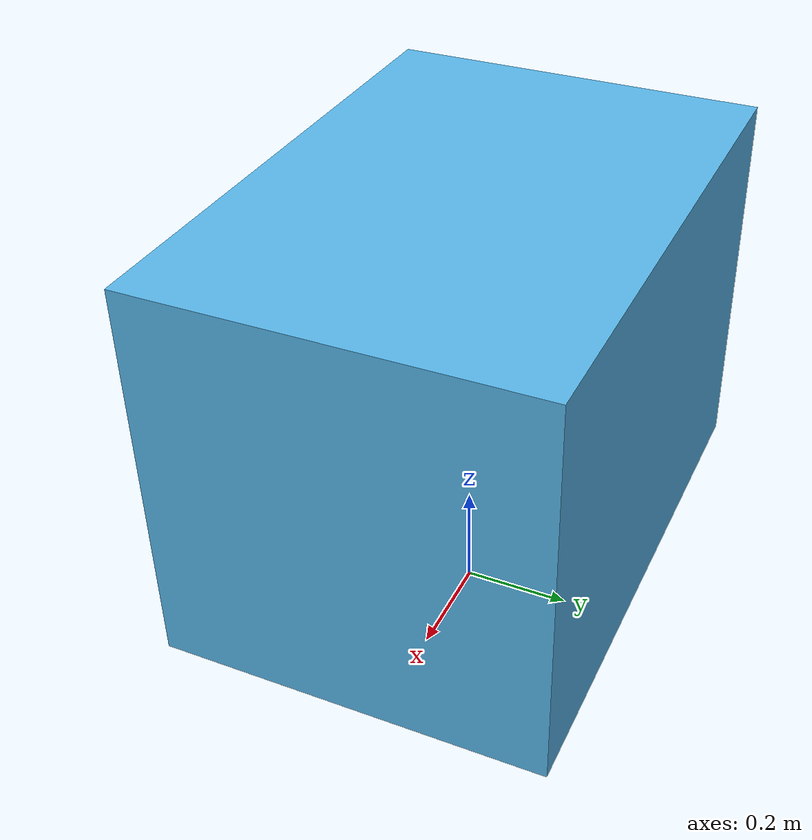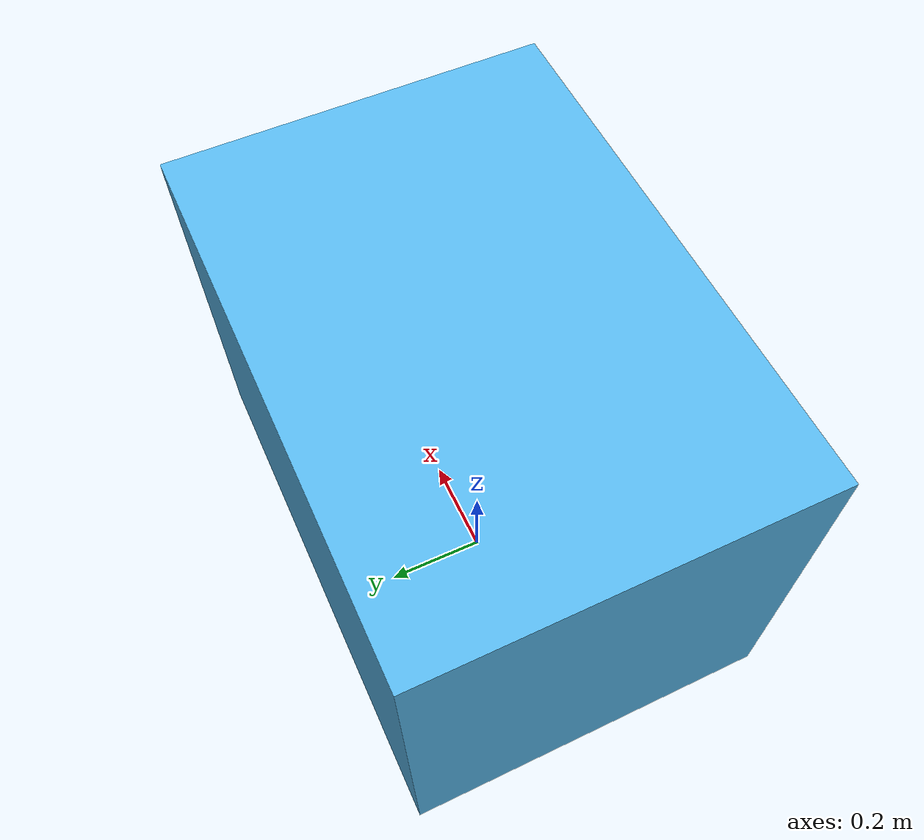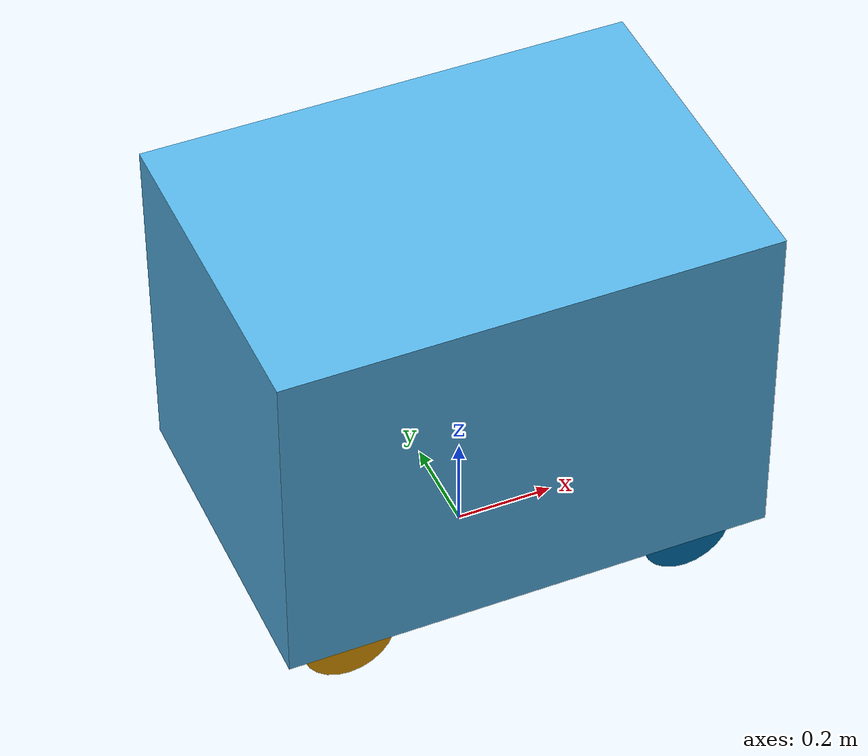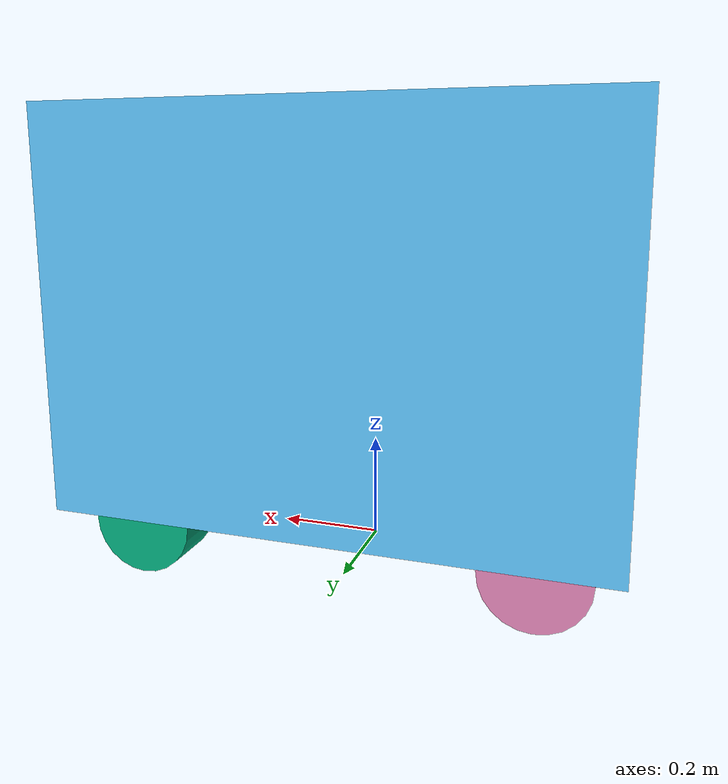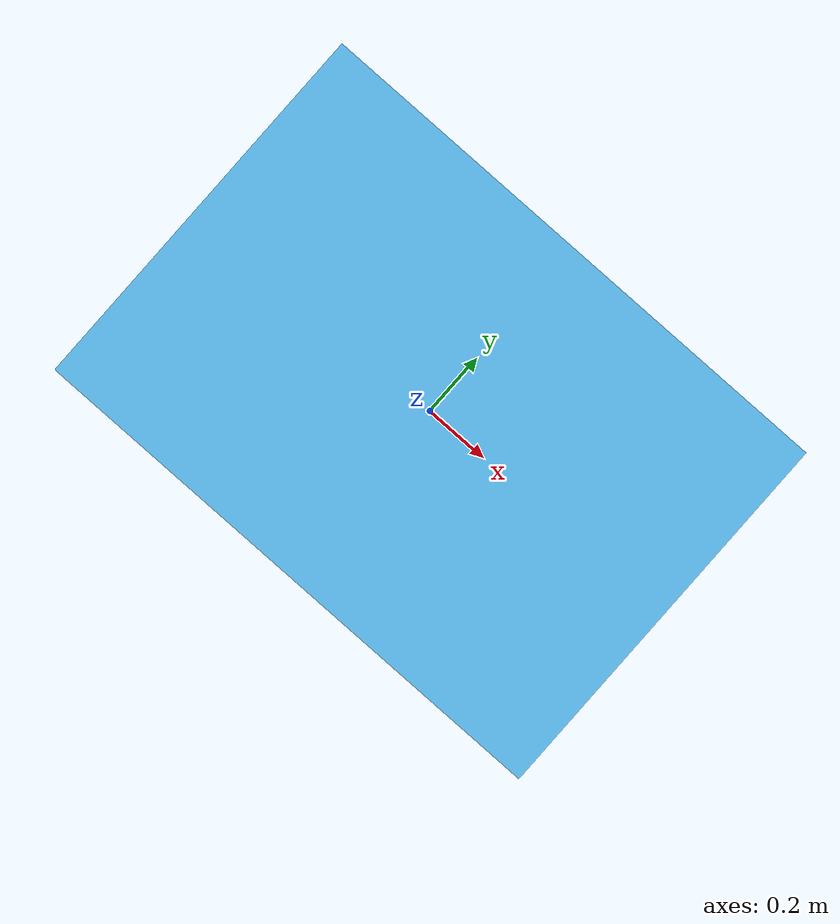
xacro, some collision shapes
<?xml version="1.0"?>
<robot name="DonkeyRobot" xmlns:xacro="http://www.ros.org/wiki/xacro">
    <xacro:include filename="$(find donkey_description)/urdf/donkey.xacro" />

    <xacro:donkey_base prefix="donkey_" donkey_gazebo_ros_control="true">
        <origin xyz="0.0 0.0 0.0" rpy="0 0 0"/>
    </xacro:donkey_base>

    <link name="dummy_link"/>
    <xacro:meccanum_base_mount prefix="donkey_" child="dummy_link">
        <origin xyz="0.0 0.0 0.0" rpy="0 0 0"/>
    </xacro:meccanum_base_mount>

</robot>

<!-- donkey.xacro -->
<robot name="donkey_base" xmlns:xacro="http://ros.org/wiki/xacro">
    <xacro:include filename="$(find donkey_description)/urdf/base/base.xacro" />

    <xacro:macro name="donkey_base" params="prefix *origin donkey_gazebo_ros_control:=true">
        <xacro:property name="wheel_radius" value="0.095" />
        <xacro:property name="wheel_thickness" value="0.10" />
        <xacro:property name="wheel_mass" value="8.0" />
        <xacro:property name="wheel_base" value="0.72" />
        <xacro:property name="track_gauge" value="0.5" />
        <xacro:property name="base_mass" value="200.0" />
        <xacro:property name="base_height" value="0.877" />
        <xacro:property name="base_length" value="1.007" />
        <xacro:property name="base_width" value="0.707" />

        <xacro:meccanum_base prefix="donkey_" size_x="${base_length}" size_y="${base_width}" size_z="${base_height}" mass="${base_mass}"/>

        <xacro:meccanum_wheel prefix="fl_" parent="donkey_base" radius="${wheel_radius}" height="${wheel_thickness}" mass="${wheel_mass}">
            <origin xyz="${wheel_base/2} ${track_gauge/2} ${wheel_radius}" rpy="0 0 0"/>
            <axis>-1 1 0</axis>
        </xacro:meccanum_wheel>

        <xacro:meccanum_wheel prefix="fr_" parent="donkey_base" radius="${wheel_radius}" height="${wheel_thickness}" mass="${wheel_mass}">
            <origin xyz="${wheel_base/2} -${track_gauge/2} ${wheel_radius}" rpy="0 0 0"/>
            <axis>-1 -1 0</axis>
        </xacro:meccanum_wheel>

        <xacro:meccanum_wheel prefix="rl_" parent="donkey_base" radius="${wheel_radius}" height="${wheel_thickness}" mass="${wheel_mass}">
            <origin xyz="-${wheel_base/2} ${track_gauge/2} ${wheel_radius}" rpy="0 0 0"/>
            <axis>1 1 0</axis>
        </xacro:meccanum_wheel>

        <xacro:meccanum_wheel prefix="rr_" parent="donkey_base" radius="${wheel_radius}" height="${wheel_thickness}" mass="${wheel_mass}">
            <origin xyz="-${wheel_base/2} -${track_gauge/2} ${wheel_radius}" rpy="0 0 0"/>
            <axis>1 -1 0</axis>
        </xacro:meccanum_wheel>

        <xacro:if value="${donkey_gazebo_ros_control}">
            <gazebo>
                <plugin name="gazebo_ros_control" filename="libgazebo_ros_control.so">
                    <robotNamespace>/donkey</robotNamespace>
                </plugin>
            </gazebo>
        </xacro:if>
    </xacro:macro>
</robot>

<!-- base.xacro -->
<robot name="generic_base" xmlns:xacro="http://ros.org/wiki/xacro">

    <xacro:macro name="base_cylinder_inertia_def" params="r h mass">
        <inertia ixx="${mass*(3*r*r+h*h)/12}" ixy="0" ixz="0" iyy="${mass*(3*r*r+h*h)/12}" iyz="0" izz="${mass*r*r/2}"/>
    </xacro:macro>

    <xacro:macro name="base_box_inertia_def" params="x y z mass">
        <inertia iyy="${mass*(z*z+x*x)/12.0}" ixx="${mass*(y*y+z*z)/12.0}" izz="${mass*(x*x+y*y)/12.0}" ixy="0.0" iyz="0.0" ixz="0.0"/>
    </xacro:macro>

    <xacro:macro name="base_sphere_inertia_def" params="radius mass">
        <inertia ixx="${2/5*mass*radius*radius}" ixy="0" ixz="0" iyy="${2/5*mass*radius*radius}" iyz="0" izz="${2/5*mass*radius*radius}"/>
    </xacro:macro>

    <xacro:macro name="gazebo_mecanum_link" params="parent radius mass">
        <link name="${parent}_passive">
            <inertial>
                <mass value="1.0"/>
                <origin rpy="0 0 0" xyz="0 0 0"/>
                <xacro:base_sphere_inertia_def radius="${radius}" mass="1.0"/>
            </inertial>
            <collision>
                <origin rpy="0 0 0" xyz="0 0 0"/>
                <geometry>
                    <sphere radius="${radius}"/>
                </geometry>
            </collision>
        </link>
        <joint name="${parent}_passive_joint" type="continuous">
            <axis xyz="0 1 0"/>
            <limit effort="100" velocity="100.0"/>
            <dynamics damping="0.0" friction="0.0"/>
            <safety_controller k_velocity="10.0"/>
            <origin rpy="0 0 0" xyz="0 0 0"/>
            <parent link="${parent}"/>
            <child link="${parent}_passive"/>
        </joint>
        <gazebo reference="${parent}_passive_joint">
            <implicitSpringDamper>1</implicitSpringDamper>
        </gazebo>
        <!-- Passive joint transmission with effort interface.
             Workaround to get all joints to publish a state.
             Do NOT use these joints for control! -->
        <transmission name="${parent}_passive_joint_trans">
            <type>transmission_interface/SimpleTransmission</type>
            <joint name="${parent}_passive_joint">
                <hardwareInterface>hardware_interface/EffortJointInterface</hardwareInterface>
            </joint>
            <actuator name="${parent}_passive_joint_motor">
                <mechanicalReduction>1</mechanicalReduction>
            </actuator>
        </transmission>
        <!-- Contact properties -->
        <gazebo reference="${parent}_passive">
            <mu>5</mu>
            <mu2>5</mu2>
            <dampingFactor>0.00001</dampingFactor>
            <selfCollide>0</selfCollide>
            <kp>1e6</kp>
            <kd>1e2</kd>
            <maxVel>2.0</maxVel>
            <minDepth>0.001</minDepth>
        </gazebo>
    </xacro:macro>

    <!-- Must specify parent and prefix params when instantiating -->
    <xacro:macro name="meccanum_wheel" params="prefix parent *origin radius height mass *axis">
        <link name="${prefix}wheel_link">
            <inertial>
                <mass value="${mass}"/>
                <origin rpy="${pi/2} 0 0" xyz="0 0 0"/>
                <xacro:base_cylinder_inertia_def r="${radius}" h="${height}" mass="${mass}"/>
            </inertial>
            <visual>
                <origin rpy="${pi/2} 0 0" xyz="0 0 0"/>
                <geometry>
                    <cylinder length="${height}" radius="${radius}"/>
                </geometry>
            </visual>
        </link>
        <joint name="${prefix}wheel_joint" type="continuous">
            <axis xyz="0 1 0"/>
            <limit effort="100" velocity="100"/>
            <dynamics damping="0.0" friction="0.0"/>
            <safety_controller k_velocity="10.0"/>
            <xacro:insert_block name="origin"/>
            <parent link="${parent}"/>
            <child link="${prefix}wheel_link"/>
        </joint>
        <xacro:gazebo_mecanum_link parent="${prefix}wheel_link" radius="${radius}" mass="${mass}"/>
        <gazebo>
            <!-- Mecanum plugin -->
            <plugin name="${prefix}wheel_controller" filename="libmecanum_gazebo_plugin.so">
                <wheelLinkName>${prefix}wheel_link</wheelLinkName>
                <baseLinkName>base_link</baseLinkName>
                <xacro:insert_block name="axis"/>
            </plugin>
        </gazebo>
        <gazebo reference="${prefix}wheel_joint">
            <implicitSpringDamper>1</implicitSpringDamper>
        </gazebo>
        <gazebo reference="${prefix}wheel_link">
            <dampingFactor>0.001</dampingFactor>
        </gazebo>
        <transmission name="${prefix}wheel_joint_trans">
            <type>transmission_interface/SimpleTransmission</type>
            <joint name="${prefix}wheel_joint">
                <hardwareInterface>hardware_interface/VelocityJointInterface</hardwareInterface>
            </joint>
            <actuator name="${prefix}wheel_joint_motor">
                <mechanicalReduction>1</mechanicalReduction>
            </actuator>
        </transmission>
    </xacro:macro>

    <!-- Must specify parent and prefix params when instantiating -->
    <xacro:macro name="meccanum_base" params="prefix size_x size_y size_z mass">

        <!-- Base link-->
        <link name="base_link"/>
        <link name="donkey_base">
            <inertial>
                <mass value="${mass}"/>
                <origin rpy="0 0 0" xyz="0.0 0.0 ${base_height/2 + 0.01}"/>
                <xacro:base_box_inertia_def x="${base_length}" y="${base_width}" z="${base_height}" mass="${mass}"/>
            </inertial>
            <visual>
                <origin rpy="0 0 0" xyz="0.0 0.0 0.0"/>
                <geometry>
                    <mesh filename="package://donkey_description/meshes/donkey_colourised_decimated.dae"/>
                </geometry>
            </visual>
            <collision>
                <origin rpy="0 0 0" xyz="0.0 0.0 ${base_height/2 + 0.05}"/>
                <geometry>
                    <box size="${base_length} ${base_width} ${base_height-0.15}"/>
                </geometry>
            </collision>
        </link>
        <gazebo reference="donkey_base">
            <dampingFactor>0.001</dampingFactor>
        </gazebo>

        <joint name="donkey_base_link_joint" type="fixed">
            <child link="donkey_base"/>
            <parent link="base_link"/>
            <origin rpy="0 0 0" xyz="0 0 0"/>
        </joint>

    </xacro:macro>

    <xacro:macro name="meccanum_base_mount" params="prefix child *origin">

        <joint name="donkey_base_mount_joint" type="fixed">
            <child link="${child}"/>
            <parent link="base_link"/>
            <xacro:insert_block name="origin"/>
        </joint>
    </xacro:macro>
</robot>
